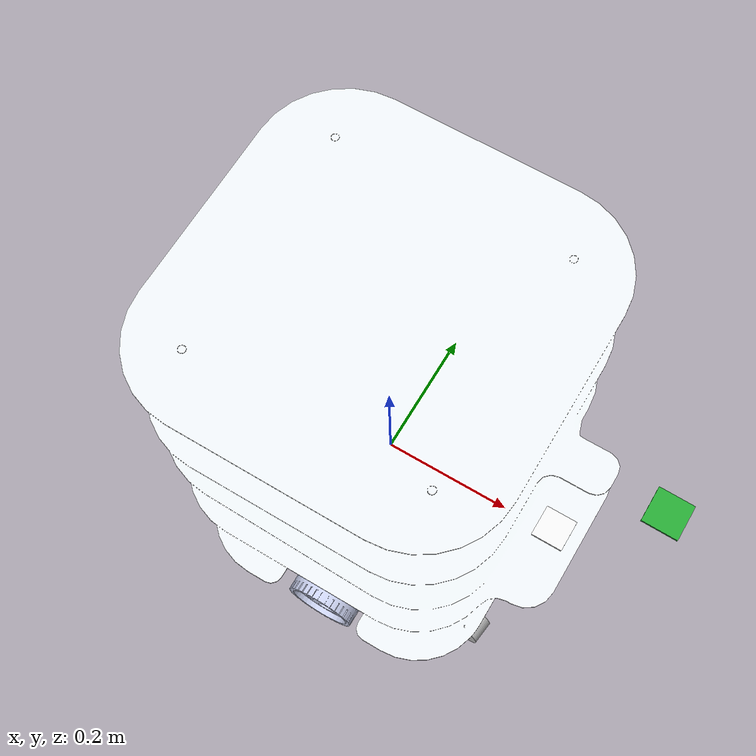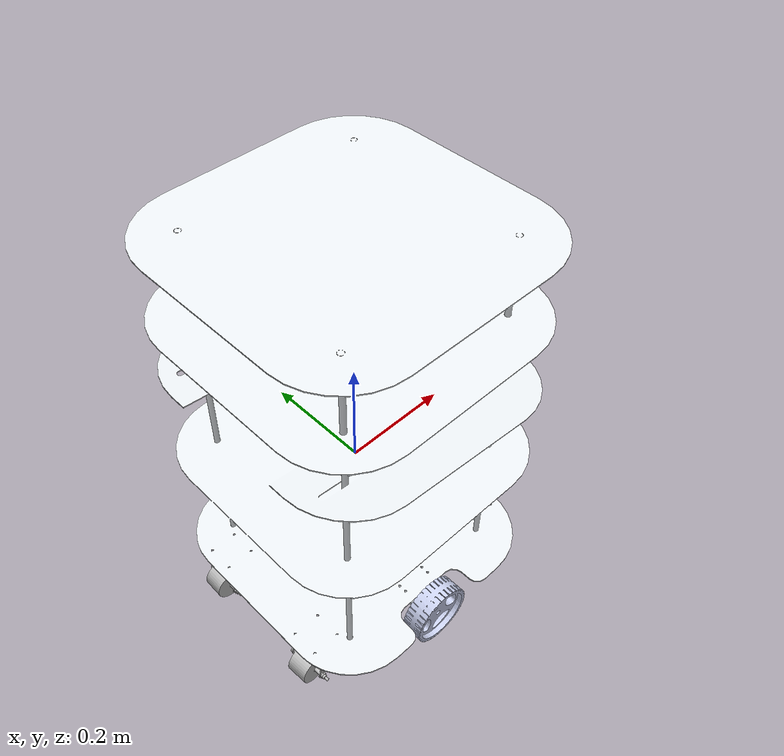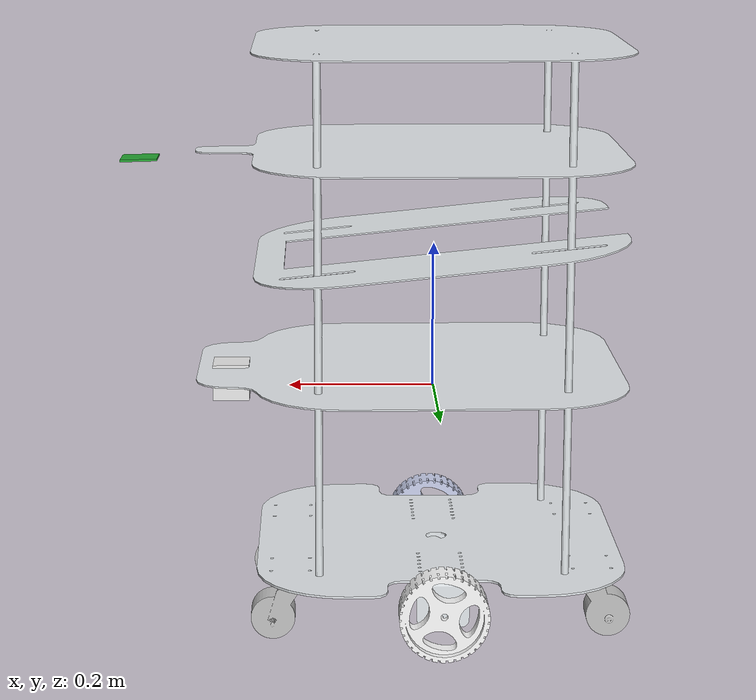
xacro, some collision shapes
<?xml version="1.0" encoding="utf-8"?>

<robot
    name="binbot" xmlns:xacro="http://www.ros.org/wiki/xacro">

  <xacro:include filename="$(find binbot_description)/urdf/binbot.gazebo"/>

  <link name="base_link"></link>

 <joint name="joint_base" type="fixed">
    <parent link="base_link"/>
    <child link="chassis_link"/>
  </joint>
  <link
    name="chassis_link">
    <inertial>
      <origin
        xyz="0.000746112599556537 5.73870420864098E-05 0.0362024553881127"
        rpy="0 0 0" />
      <mass
        value="6.9713910509313" />
      <inertia
        ixx="0.160050269475172"
        ixy="0"
        ixz="0.0"
        iyy="0.167840131407414"
        iyz="0"
        izz="0.199929277805885" />
    </inertial>
    <visual>
      <origin
        xyz="0 0 0"
        rpy="0 0 0" />
      <geometry>
        <mesh
          filename="package://binbot_description/meshes/chassis_link.STL" />
      </geometry>
      <material
        name="AL">
        <color
          rgba="0.898039215686275 0.917647058823529 0.929411764705882 1" />
      </material>
    </visual>
    <collision>
      <origin
        xyz="0 0 0"
        rpy="0 0 0" />
      <geometry>
        <mesh
          filename="package://binbot_description/meshes/chassis_link.STL" />
      </geometry>
    </collision>
  </link>
  <link
    name="FRcastor_link">
    <inertial>
      <origin
        xyz="0 0 0"
        rpy="0 0 0" />
      <mass
        value="0.13444" />
      <inertia
        ixx="4.8343E-05"
        ixy="0"
        ixz="0"
        iyy="5.4779E-05"
        iyz="0"
        izz="5.0353E-05" />
    </inertial>
    <visual>
      <origin
        xyz="0 0 0"
        rpy="0 0 0" />
      <geometry>
        <mesh
          filename="package://binbot_description/meshes/FRcastor_link.STL" />
      </geometry>
      <material
        name="AL">
        <color
          rgba="0.75294 0.75294 0.75294 1" />
      </material>
    </visual>
    <collision>
      <origin
        xyz="0 0 0"
        rpy="0 0 0" />
      <geometry>
        <mesh
          filename="package://binbot_description/meshes/FRcastor_link.STL" />
      </geometry>
    </collision>
  </link>
  <joint
    name="FRcastor_joint"
    type="fixed">
    <origin
      xyz="0 0 0"
      rpy="0 0 0" />
    <parent
      link="chassis_link" />
    <child
      link="FRcastor_link" />
    <axis
      xyz="0 0 0" />
  </joint>
  <link
    name="FLcastor_link">
    <inertial>
      <origin
        xyz="0 0 0"
        rpy="0 0 0" />
      <mass
        value="0.13444" />
      <inertia
        ixx="4.8332E-05"
        ixy="0"
        ixz="0"
        iyy="5.479E-05"
        iyz="0"
        izz="5.0353E-05" />
    </inertial>
    <visual>
      <origin
        xyz="0 0 0"
        rpy="0 0 0" />
      <geometry>
        <mesh
          filename="package://binbot_description/meshes/FLcastor_link.STL" />
      </geometry>
      <material
        name="AL">
        <color
          rgba="0.75294 0.75294 0.75294 1" />
      </material>
    </visual>
    <collision>
      <origin
        xyz="0 0 0"
        rpy="0 0 0" />
      <geometry>
        <mesh
          filename="package://binbot_description/meshes/FLcastor_link.STL" />
      </geometry>
    </collision>
  </link>
  <joint
    name="FLcastor_joint"
    type="fixed">
    <origin
      xyz="0 0 0"
      rpy="0 0 0" />
    <parent
      link="chassis_link" />
    <child
      link="FLcastor_link" />
    <axis
      xyz="0 0 0" />
  </joint>
  <link
    name="BRcastor_link">
    <inertial>
      <origin
        xyz="0 0 0"
        rpy="0 0 0" />
      <mass
        value="0.13444" />
      <inertia
        ixx="4.8398E-05"
        ixy="0"
        ixz="0"
        iyy="5.4725E-05"
        iyz="0"
        izz="5.0353E-05" />
    </inertial>
    <visual>
      <origin
        xyz="0 0 0"
        rpy="0 0 0" />
      <geometry>
        <mesh
          filename="package://binbot_description/meshes/BRcastor_link.STL" />
      </geometry>
      <material
        name="AL">
        <color
          rgba="0.75294 0.75294 0.75294 1" />
      </material>
    </visual>
    <collision>
      <origin
        xyz="0 0 0"
        rpy="0 0 0" />
      <geometry>
        <mesh
          filename="package://binbot_description/meshes/BRcastor_link.STL" />
      </geometry>
    </collision>
  </link>
  <joint
    name="BRcastor_joint"
    type="fixed">
    <origin
      xyz="0 0 0"
      rpy="0 0 0" />
    <parent
      link="chassis_link" />
    <child
      link="BRcastor_link" />
    <axis
      xyz="0 0 0" />
  </joint>
  <link
    name="BLcastor_link">
    <inertial>
      <origin
        xyz="-0.230813994823497 0.117568268519039 -0.283501827258346"
        rpy="0 0 0" />
      <mass
        value="0.134438438452519" />
      <inertia
        ixx="4.83202156037859E-05"
        ixy="0"
        ixz="0"
        iyy="5.48024819135638E-05"
        iyz="0"
        izz="5.03528153762235E-05" />
    </inertial>
    <visual>
      <origin
        xyz="0 0 0"
        rpy="0 0 0" />
      <geometry>
        <mesh
          filename="package://binbot_description/meshes/BLcastor_link.STL" />
      </geometry>
      <material
        name="">
        <color
          rgba="0.752941176470588 0.752941176470588 0.752941176470588 1" />
      </material>
    </visual>
    <collision>
      <origin
        xyz="0 0 0"
        rpy="0 0 0" />
      <geometry>
        <mesh
          filename="package://binbot_description/meshes/BLcastor_link.STL" />
      </geometry>
    </collision>
  </link>
  <joint
    name="BLcastor_joint"
    type="fixed">
    <origin
      xyz="0 0 0"
      rpy="0 0 0" />
    <parent
      link="chassis_link" />
    <child
      link="BLcastor_link" />
    <axis
      xyz="0 0 0" />
  </joint>
  <link
    name="right_wheel">
    <inertial>
      <origin
        xyz="0 0 0"
        rpy="0 0 0" />
      <mass
        value="0.19464" />
      <inertia
        ixx="0.00023936"
        ixy="0"
        ixz="0"
        iyy="0.00023937"
        iyz="0"
        izz="0.0004471" />
    </inertial>
    <visual>
      <origin
        xyz="0 0 0"
        rpy="0 0 0" />
      <geometry>
        <mesh
          filename="package://binbot_description/meshes/right_wheel.STL" />
      </geometry>
      <material
        name="AL">
        <color
          rgba="0.79216 0.81961 0.93333 1" />
      </material>
    </visual>
    <collision>
      <origin
        xyz="0 0 0"
        rpy="0 0 0" />
      <geometry>
        <mesh
          filename="package://binbot_description/meshes/right_wheel.STL" />
      </geometry>
    </collision>
  </link>
  <joint
    name="right_wheel_joint"
    type="continuous">
    <origin
      xyz="-0.005693 -0.21494 -0.25969"
      rpy="-1.5708 0 0" />
    <parent
      link="chassis_link" />
    <child
      link="right_wheel" />
    <axis
      xyz="0 0 1" />
  </joint>
  <link
    name="left_wheel">
   <inertial>
      <origin
        xyz="0 0 0"
        rpy="0 0 0" />
      <mass
        value="0.19464" />
      <inertia
        ixx="0.00023936"
        ixy="0"
        ixz="0"
        iyy="0.00023937"
        iyz="0"
        izz="0.0004471" />
    </inertial>
    <visual>
      <origin
        xyz="0 0 0"
        rpy="0 0 0" />
      <geometry>
        <mesh
          filename="package://binbot_description/meshes/left_wheel.STL" />
      </geometry>
      <material
        name="">
        <color
          rgba="1 1 1 1" />
      </material>
    </visual>
    <collision>
      <origin
        xyz="0 0 0"
        rpy="0 0 0" />
      <geometry>
        <mesh
          filename="package://binbot_description/meshes/left_wheel.STL" />
      </geometry>
    </collision>
  </link>
  <joint
    name="left_wheel_joint"
    type="continuous">
    <origin
      xyz="-0.005693 0.21506 -0.25969"
      rpy="-1.5708 0 -3.1416" />
    <parent
      link="chassis_link" />
    <child
      link="left_wheel" />
    <axis
      xyz="0 0 -1" />
  </joint>

   <!--camera link-->

  <link name="camera">
      <inertial>
        <origin xyz="0.0 0.0 0.0" rpy="0.0 0.0 0.0"/>
        <mass value="0.1"/>
        <inertia ixx="1e-6" ixy="0.0" ixz="0.0" iyy="1e-6" iyz="0.0" izz="1e-6"/>
      </inertial>
      <visual name="">
        <origin xyz="0.0 0.0 0.0" rpy="0.0 0.0 0.0"/>
        <geometry>
          <box size="0.003 0.05 0.05"/>
        </geometry>

      </visual>
      <collision>
        <origin xyz="0.0 0.0 0.0" rpy="0.0 0.0 0.0"/>
        <geometry>
          <box size="0.003 0.05 0.05"/>
        </geometry>
      </collision>
      <gazebo reference="camera">
          <material>Gazebo/Green</material>
      </gazebo>
  </link>

  <joint name="camera_joint" type="fixed">
    <origin xyz="0.4 0.0 0.32" rpy="0.0 1.6 0.0"/>
    <parent link="chassis_link"/>
    <child link="camera"/>
    <axis xyz="1 0.0 0.0"/>
  </joint>

  <!--kinect_link-->
  <link name="kinect_link">
      <inertial>
        <origin xyz="0.0 0.0 0.0" rpy="0.0 0.0 0.0"/>
        <mass value="0.1"/>
        <inertia ixx="1e-6" ixy="0.0" ixz="0.0" iyy="1e-6" iyz="0.0" izz="1e-6"/>
      </inertial>
      <visual name="">
        <origin xyz="0.0 0.0 0.0" rpy="0.0 0.0 0.0"/>
        <geometry>
          <mesh filename="package://binbot_description/meshes/kinect.dae"/>
        </geometry>
        <material name="white"/>
      </visual>
      <collision>
        <origin xyz="0.0 0.0 0.0" rpy="0.0 0.0 0.0"/>
        <geometry>
          <box size="0.05 0.05 0.05"/>
        </geometry>
      </collision>

  </link>

  <joint name="kinect_joint" type="fixed">
    <origin xyz="0.28 0.0 0.01" rpy="0.0 0.0 0.0"/>
    <parent link="chassis_link"/>
    <child link="kinect_link"/>
    <axis xyz="0.0 1 0.0"/>
  </joint>

  <joint name="camera_optical_joint" type="fixed">
    <origin xyz="0 0 0" rpy="-1.5707 0 -1.5707"/>
    <parent link="kinect_link"/>
    <child link="camera_link_optical"/>
  </joint>

  <link name="camera_link_optical">
  </link>

</robot>
